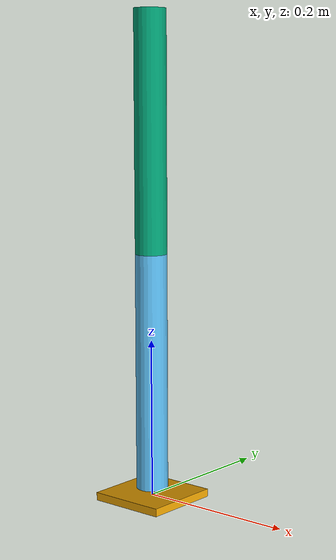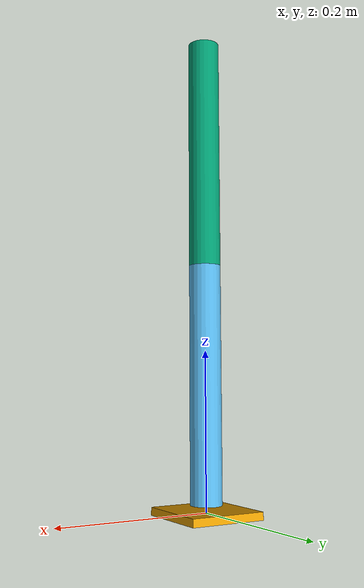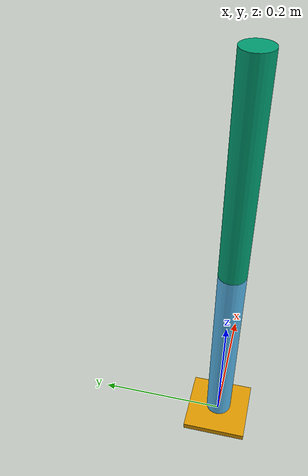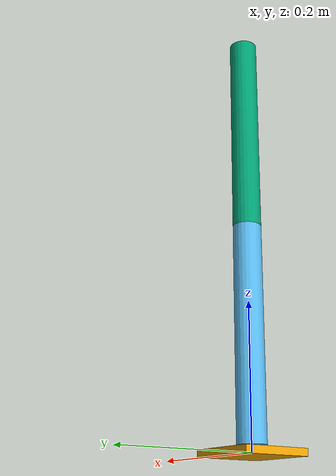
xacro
<?xml version="1.0"?>

<robot xmlns:xacro="http://www.ros.org/wiki/xacro">

    <xacro:property name="arm_base_length" value="0.1"/>
    <xacro:property name="arm_base_width" value="0.1"/>
    <xacro:property name="arm_base_height" value="0.01"/>
    <xacro:property name="arm_length" value="0.3"/>
    <xacro:property name="arm_radius" value="0.02"/>

    <link name="arm_base_link">
        <visual>
            <geometry>
                <box size="${arm_base_length} ${arm_base_width} ${arm_base_height}"/>
            </geometry>
            <origin xyz="0 0 0" rpy="0 0 0"/>
            <material name="arm_base"/>
        </visual>
        <collision>
            <geometry>
                <box size="${arm_base_length} ${arm_base_width} ${arm_base_height}"/>
            </geometry>
            <origin xyz="0 0 0" rpy="0 0 0"/>
        </collision>
        <xacro:box_inertial m="0.5" x="${arm_base_length}" y="${arm_base_width}" z="${arm_base_height}"
                                o_xyz="0 0 0" o_rpy="0 0 0"/>

    </link>

    <link name="forearm_link">
       <visual>
            <geometry>
                <cylinder radius="${arm_radius}" length="${arm_length}"/>
            </geometry>
            <origin xyz="0 0 ${arm_length/2}" rpy="0 0 0"/>
            <material name="forearm"/>
        </visual>

        <collision>
            <geometry>
                <cylinder radius="${arm_radius}" length="${arm_length}"/>
            </geometry>
            <origin xyz="0 0 ${arm_length/2}" rpy="0 0 0"/>
        </collision>
        <xacro:cylinder_inertial m="0.3" r="${arm_radius}" h="${arm_length}"
                                   o_xyz="0 0 ${arm_length/2}" o_rpy="0 0 0"/>

    </link>

    <link name="hand_link">
       <visual>
            <geometry>
                <cylinder radius="${arm_radius}" length="${arm_length}"/>
            </geometry>
            <origin xyz="0 0 ${arm_length/2}" rpy="0 0 0"/>
            <material name="hand"/>
        </visual>
         <collision>
            <geometry>
                <cylinder radius="${arm_radius}" length="${arm_length}"/>
            </geometry>
            <origin xyz="0 0 ${arm_length/2}" rpy="0 0 0"/>
        </collision>
        <xacro:cylinder_inertial m="0.3" r="${arm_radius}" h="${arm_length}"
                                   o_xyz="0 0 ${arm_length/2}" o_rpy="0 0 0"/>

    </link>

    <joint name="arm_base_to_forearm_joint" type="revolute">
        <parent link="arm_base_link"/>
        <child link="forearm_link"/>
        <origin xyz="0 0 ${arm_base_height}" rpy="0 0 0"/>
        <axis xyz="0 1 0"/>
        <limit effort="100" velocity="100" lower="0" upper="${pi/2}"/>
        <dynamics friction="0.3" damping="0.3" />
    </joint>

   <joint name="forearm_to_hand_joint" type="revolute">
       <parent link="forearm_link"/>
       <child link="hand_link"/>
       <origin xyz="0 0 ${arm_length}" rpy="0 0 0"/>
       <axis xyz="0 1 0"/>
       <limit effort="100" velocity="100" lower="0" upper="${pi/2}"/>
       <dynamics friction="0.3" damping="0.3" />
   </joint>

</robot>
